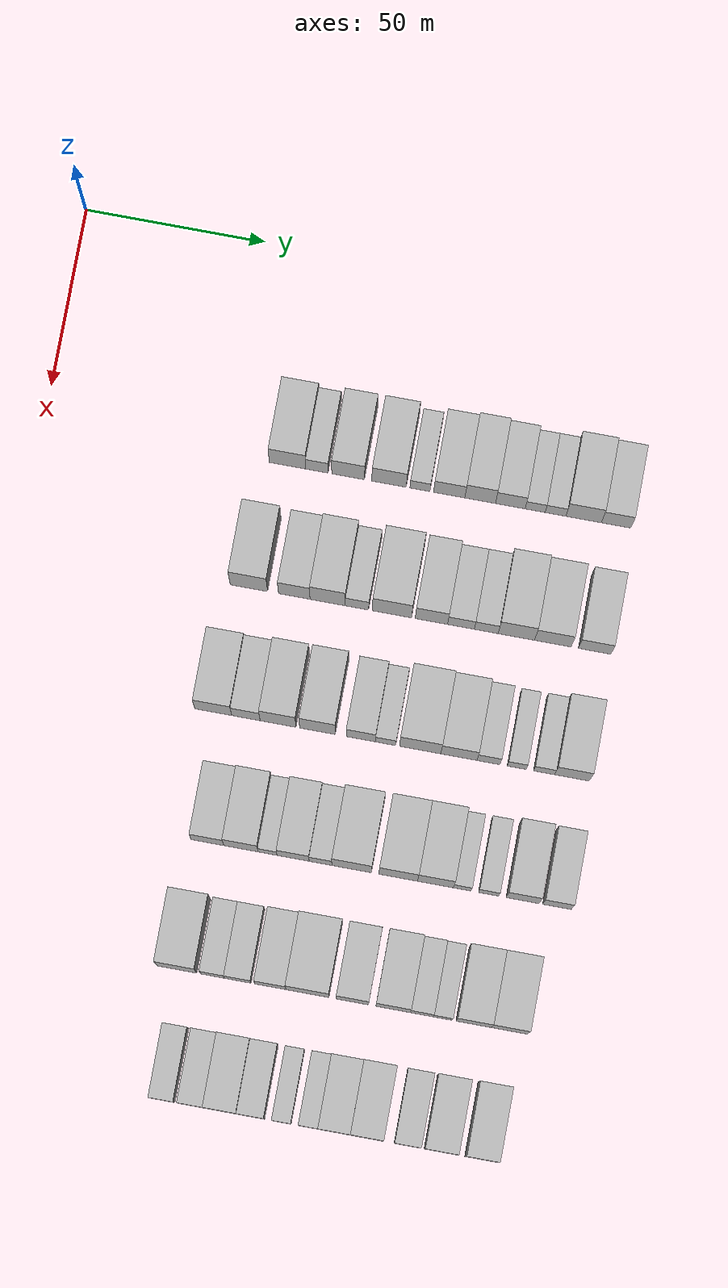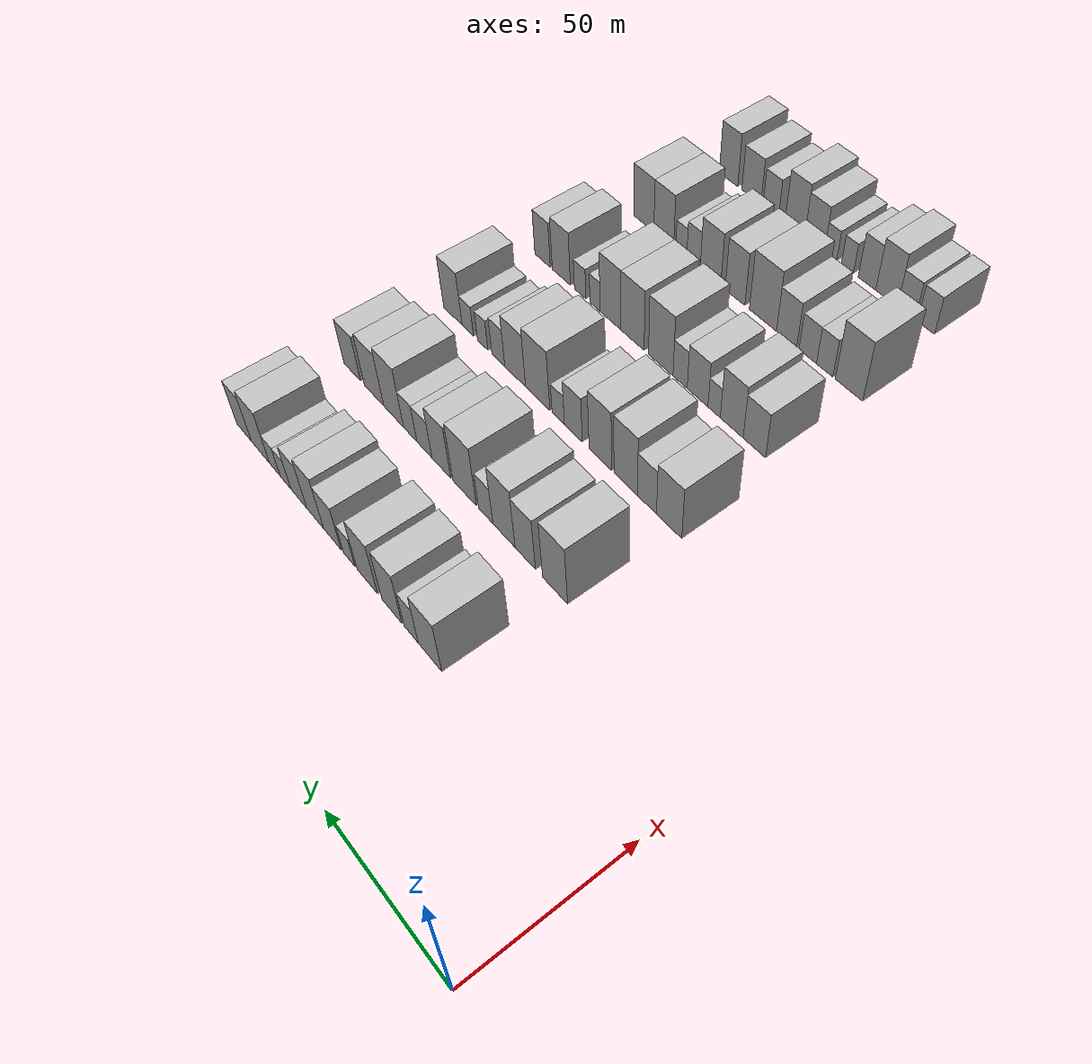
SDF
<sdf version="1.6">
 <world name="default">
  <model name="building_73">
   <static>1</static>
   <pose>50.0000 67.4264 0 0.000000 0.000000 0.000000</pose>
   <link name="link">
    <pose>0 0 10.50 0 0 0</pose>
    <collision name="collision"><geometry><box><size>20.0000 10.1006 21.0000</size></box></geometry></collision>
    <visual name="visual">
     <cast_shadows>0</cast_shadows>
     <geometry><box><size>20.0000 10.1006 21.0000</size></box></geometry>
     <material>
      <script>
       <uri>model://HANNAS_wall/materials/scripts</uri>
       <uri>model://HANNAS_wall/materials/textures</uri>
       <name>vrc/HANNAS_wall</name>
      </script>
     </material>
    </visual>
   </link>
  </model>
  <model name="building_74">
   <static>1</static>
   <pose>50.0000 75.5612 0 0.000000 0.000000 0.000000</pose>
   <link name="link">
    <pose>0 0 7.50 0 0 0</pose>
    <collision name="collision"><geometry><box><size>20.0000 6.1689 15.0000</size></box></geometry></collision>
    <visual name="visual">
     <cast_shadows>0</cast_shadows>
     <geometry><box><size>20.0000 6.1689 15.0000</size></box></geometry>
     <material>
      <script>
       <uri>model://HANNAS_wall/materials/scripts</uri>
       <uri>model://HANNAS_wall/materials/textures</uri>
       <name>vrc/HANNAS_wall</name>
      </script>
     </material>
    </visual>
   </link>
  </model>
  <model name="building_75">
   <static>1</static>
   <pose>50.0000 84.1789 0 0.000000 0.000000 0.000000</pose>
   <link name="link">
    <pose>0 0 10.50 0 0 0</pose>
    <collision name="collision"><geometry><box><size>20.0000 9.0665 21.0000</size></box></geometry></collision>
    <visual name="visual">
     <cast_shadows>0</cast_shadows>
     <geometry><box><size>20.0000 9.0665 21.0000</size></box></geometry>
     <material>
      <script>
       <uri>model://HANNAS_wall/materials/scripts</uri>
       <uri>model://HANNAS_wall/materials/textures</uri>
       <name>vrc/HANNAS_wall</name>
      </script>
     </material>
    </visual>
   </link>
  </model>
  <model name="building_76">
   <static>1</static>
   <pose>50.0000 95.4898 0 0.000000 0.000000 0.000000</pose>
   <link name="link">
    <pose>0 0 10.50 0 0 0</pose>
    <collision name="collision"><geometry><box><size>20.0000 9.5553 21.0000</size></box></geometry></collision>
    <visual name="visual">
     <cast_shadows>0</cast_shadows>
     <geometry><box><size>20.0000 9.5553 21.0000</size></box></geometry>
     <material>
      <script>
       <uri>model://HANNAS_wall/materials/scripts</uri>
       <uri>model://HANNAS_wall/materials/textures</uri>
       <name>vrc/HANNAS_wall</name>
      </script>
     </material>
    </visual>
   </link>
  </model>
  <model name="building_77">
   <static>1</static>
   <pose>50.0000 104.0410 0 0.000000 0.000000 0.000000</pose>
   <link name="link">
    <pose>0 0 6.00 0 0 0</pose>
    <collision name="collision"><geometry><box><size>20.0000 5.5472 12.0000</size></box></geometry></collision>
    <visual name="visual">
     <cast_shadows>0</cast_shadows>
     <geometry><box><size>20.0000 5.5472 12.0000</size></box></geometry>
     <material>
      <script>
       <uri>model://HANNAS_wall/materials/scripts</uri>
       <uri>model://HANNAS_wall/materials/textures</uri>
       <name>vrc/HANNAS_wall</name>
      </script>
     </material>
    </visual>
   </link>
  </model>
  <model name="building_78">
   <static>1</static>
   <pose>50.0000 112.1340 0 0.000000 0.000000 0.000000</pose>
   <link name="link">
    <pose>0 0 9.00 0 0 0</pose>
    <collision name="collision"><geometry><box><size>20.0000 8.6388 18.0000</size></box></geometry></collision>
    <visual name="visual">
     <cast_shadows>0</cast_shadows>
     <geometry><box><size>20.0000 8.6388 18.0000</size></box></geometry>
     <material>
      <script>
       <uri>model://HANNAS_wall/materials/scripts</uri>
       <uri>model://HANNAS_wall/materials/textures</uri>
       <name>vrc/HANNAS_wall</name>
      </script>
     </material>
    </visual>
   </link>
  </model>
  <model name="building_79">
   <static>1</static>
   <pose>50.0000 120.6830 0 0.000000 0.000000 0.000000</pose>
   <link name="link">
    <pose>0 0 10.50 0 0 0</pose>
    <collision name="collision"><geometry><box><size>20.0000 8.4591 21.0000</size></box></geometry></collision>
    <visual name="visual">
     <cast_shadows>0</cast_shadows>
     <geometry><box><size>20.0000 8.4591 21.0000</size></box></geometry>
     <material>
      <script>
       <uri>model://HANNAS_wall/materials/scripts</uri>
       <uri>model://HANNAS_wall/materials/textures</uri>
       <name>vrc/HANNAS_wall</name>
      </script>
     </material>
    </visual>
   </link>
  </model>
  <model name="building_80">
   <static>1</static>
   <pose>50.0000 129.0048 0 0.000000 0.000000 0.000000</pose>
   <link name="link">
    <pose>0 0 9.00 0 0 0</pose>
    <collision name="collision"><geometry><box><size>20.0000 8.1844 18.0000</size></box></geometry></collision>
    <visual name="visual">
     <cast_shadows>0</cast_shadows>
     <geometry><box><size>20.0000 8.1844 18.0000</size></box></geometry>
     <material>
      <script>
       <uri>model://HANNAS_wall/materials/scripts</uri>
       <uri>model://HANNAS_wall/materials/textures</uri>
       <name>vrc/HANNAS_wall</name>
      </script>
     </material>
    </visual>
   </link>
  </model>
  <model name="building_81">
   <static>1</static>
   <pose>50.0000 135.8698 0 0.000000 0.000000 0.000000</pose>
   <link name="link">
    <pose>0 0 6.00 0 0 0</pose>
    <collision name="collision"><geometry><box><size>20.0000 5.5455 12.0000</size></box></geometry></collision>
    <visual name="visual">
     <cast_shadows>0</cast_shadows>
     <geometry><box><size>20.0000 5.5455 12.0000</size></box></geometry>
     <material>
      <script>
       <uri>model://HANNAS_wall/materials/scripts</uri>
       <uri>model://HANNAS_wall/materials/textures</uri>
       <name>vrc/HANNAS_wall</name>
      </script>
     </material>
    </visual>
   </link>
  </model>
  <model name="building_82">
   <static>1</static>
   <pose>50.0000 141.4995 0 0.000000 0.000000 0.000000</pose>
   <link name="link">
    <pose>0 0 6.00 0 0 0</pose>
    <collision name="collision"><geometry><box><size>20.0000 5.7139 12.0000</size></box></geometry></collision>
    <visual name="visual">
     <cast_shadows>0</cast_shadows>
     <geometry><box><size>20.0000 5.7139 12.0000</size></box></geometry>
     <material>
      <script>
       <uri>model://HANNAS_wall/materials/scripts</uri>
       <uri>model://HANNAS_wall/materials/textures</uri>
       <name>vrc/HANNAS_wall</name>
      </script>
     </material>
    </visual>
   </link>
  </model>
  <model name="building_83">
   <static>1</static>
   <pose>50.0000 149.2563 0 0.000000 0.000000 0.000000</pose>
   <link name="link">
    <pose>0 0 10.50 0 0 0</pose>
    <collision name="collision"><geometry><box><size>20.0000 9.7998 21.0000</size></box></geometry></collision>
    <visual name="visual">
     <cast_shadows>0</cast_shadows>
     <geometry><box><size>20.0000 9.7998 21.0000</size></box></geometry>
     <material>
      <script>
       <uri>model://HANNAS_wall/materials/scripts</uri>
       <uri>model://HANNAS_wall/materials/textures</uri>
       <name>vrc/HANNAS_wall</name>
      </script>
     </material>
    </visual>
   </link>
  </model>
  <model name="building_84">
   <static>1</static>
   <pose>50.0000 158.2337 0 0.000000 0.000000 0.000000</pose>
   <link name="link">
    <pose>0 0 9.00 0 0 0</pose>
    <collision name="collision"><geometry><box><size>20.0000 8.1550 18.0000</size></box></geometry></collision>
    <visual name="visual">
     <cast_shadows>0</cast_shadows>
     <geometry><box><size>20.0000 8.1550 18.0000</size></box></geometry>
     <material>
      <script>
       <uri>model://HANNAS_wall/materials/scripts</uri>
       <uri>model://HANNAS_wall/materials/textures</uri>
       <name>vrc/HANNAS_wall</name>
      </script>
     </material>
    </visual>
   </link>
  </model>
  <model name="building_200">
   <static>1</static>
   <pose>85.0000 63.2922 0 0.000000 0.000000 0.000000</pose>
   <link name="link">
    <pose>0 0 12.00 0 0 0</pose>
    <collision name="collision"><geometry><box><size>20.0000 10.2936 24.0000</size></box></geometry></collision>
    <visual name="visual">
     <cast_shadows>0</cast_shadows>
     <geometry><box><size>20.0000 10.2936 24.0000</size></box></geometry>
     <material>
      <script>
       <uri>model://HANNAS_wall/materials/scripts</uri>
       <uri>model://HANNAS_wall/materials/textures</uri>
       <name>vrc/HANNAS_wall</name>
      </script>
     </material>
    </visual>
   </link>
  </model>
  <model name="building_201">
   <static>1</static>
   <pose>85.0000 75.7845 0 0.000000 0.000000 0.000000</pose>
   <link name="link">
    <pose>0 0 10.50 0 0 0</pose>
    <collision name="collision"><geometry><box><size>20.0000 8.6910 21.0000</size></box></geometry></collision>
    <visual name="visual">
     <cast_shadows>0</cast_shadows>
     <geometry><box><size>20.0000 8.6910 21.0000</size></box></geometry>
     <material>
      <script>
       <uri>model://HANNAS_wall/materials/scripts</uri>
       <uri>model://HANNAS_wall/materials/textures</uri>
       <name>vrc/HANNAS_wall</name>
      </script>
     </material>
    </visual>
   </link>
  </model>
  <model name="building_202">
   <static>1</static>
   <pose>85.0000 84.9966 0 0.000000 0.000000 0.000000</pose>
   <link name="link">
    <pose>0 0 12.00 0 0 0</pose>
    <collision name="collision"><geometry><box><size>20.0000 9.7331 24.0000</size></box></geometry></collision>
    <visual name="visual">
     <cast_shadows>0</cast_shadows>
     <geometry><box><size>20.0000 9.7331 24.0000</size></box></geometry>
     <material>
      <script>
       <uri>model://HANNAS_wall/materials/scripts</uri>
       <uri>model://HANNAS_wall/materials/textures</uri>
       <name>vrc/HANNAS_wall</name>
      </script>
     </material>
    </visual>
   </link>
  </model>
  <model name="building_203">
   <static>1</static>
   <pose>85.0000 93.0707 0 0.000000 0.000000 0.000000</pose>
   <link name="link">
    <pose>0 0 7.50 0 0 0</pose>
    <collision name="collision"><geometry><box><size>20.0000 6.4151 15.0000</size></box></geometry></collision>
    <visual name="visual">
     <cast_shadows>0</cast_shadows>
     <geometry><box><size>20.0000 6.4151 15.0000</size></box></geometry>
     <material>
      <script>
       <uri>model://HANNAS_wall/materials/scripts</uri>
       <uri>model://HANNAS_wall/materials/textures</uri>
       <name>vrc/HANNAS_wall</name>
      </script>
     </material>
    </visual>
   </link>
  </model>
  <model name="building_204">
   <static>1</static>
   <pose>85.0000 102.6918 0 0.000000 0.000000 0.000000</pose>
   <link name="link">
    <pose>0 0 12.00 0 0 0</pose>
    <collision name="collision"><geometry><box><size>20.0000 10.8271 24.0000</size></box></geometry></collision>
    <visual name="visual">
     <cast_shadows>0</cast_shadows>
     <geometry><box><size>20.0000 10.8271 24.0000</size></box></geometry>
     <material>
      <script>
       <uri>model://HANNAS_wall/materials/scripts</uri>
       <uri>model://HANNAS_wall/materials/textures</uri>
       <name>vrc/HANNAS_wall</name>
      </script>
     </material>
    </visual>
   </link>
  </model>
  <model name="building_205">
   <static>1</static>
   <pose>85.0000 113.5567 0 0.000000 0.000000 0.000000</pose>
   <link name="link">
    <pose>0 0 10.50 0 0 0</pose>
    <collision name="collision"><geometry><box><size>20.0000 8.9026 21.0000</size></box></geometry></collision>
    <visual name="visual">
     <cast_shadows>0</cast_shadows>
     <geometry><box><size>20.0000 8.9026 21.0000</size></box></geometry>
     <material>
      <script>
       <uri>model://HANNAS_wall/materials/scripts</uri>
       <uri>model://HANNAS_wall/materials/textures</uri>
       <name>vrc/HANNAS_wall</name>
      </script>
     </material>
    </visual>
   </link>
  </model>
  <model name="building_206">
   <static>1</static>
   <pose>85.0000 121.6901 0 0.000000 0.000000 0.000000</pose>
   <link name="link">
    <pose>0 0 7.50 0 0 0</pose>
    <collision name="collision"><geometry><box><size>20.0000 7.3642 15.0000</size></box></geometry></collision>
    <visual name="visual">
     <cast_shadows>0</cast_shadows>
     <geometry><box><size>20.0000 7.3642 15.0000</size></box></geometry>
     <material>
      <script>
       <uri>model://HANNAS_wall/materials/scripts</uri>
       <uri>model://HANNAS_wall/materials/textures</uri>
       <name>vrc/HANNAS_wall</name>
      </script>
     </material>
    </visual>
   </link>
  </model>
  <model name="building_207">
   <static>1</static>
   <pose>85.0000 128.6524 0 0.000000 0.000000 0.000000</pose>
   <link name="link">
    <pose>0 0 7.50 0 0 0</pose>
    <collision name="collision"><geometry><box><size>20.0000 6.5603 15.0000</size></box></geometry></collision>
    <visual name="visual">
     <cast_shadows>0</cast_shadows>
     <geometry><box><size>20.0000 6.5603 15.0000</size></box></geometry>
     <material>
      <script>
       <uri>model://HANNAS_wall/materials/scripts</uri>
       <uri>model://HANNAS_wall/materials/textures</uri>
       <name>vrc/HANNAS_wall</name>
      </script>
     </material>
    </visual>
   </link>
  </model>
  <model name="building_208">
   <static>1</static>
   <pose>85.0000 136.9403 0 0.000000 0.000000 0.000000</pose>
   <link name="link">
    <pose>0 0 12.00 0 0 0</pose>
    <collision name="collision"><geometry><box><size>20.0000 10.0155 24.0000</size></box></geometry></collision>
    <visual name="visual">
     <cast_shadows>0</cast_shadows>
     <geometry><box><size>20.0000 10.0155 24.0000</size></box></geometry>
     <material>
      <script>
       <uri>model://HANNAS_wall/materials/scripts</uri>
       <uri>model://HANNAS_wall/materials/textures</uri>
       <name>vrc/HANNAS_wall</name>
      </script>
     </material>
    </visual>
   </link>
  </model>
  <model name="building_209">
   <static>1</static>
   <pose>85.0000 146.9889 0 0.000000 0.000000 0.000000</pose>
   <link name="link">
    <pose>0 0 10.50 0 0 0</pose>
    <collision name="collision"><geometry><box><size>20.0000 10.0817 21.0000</size></box></geometry></collision>
    <visual name="visual">
     <cast_shadows>0</cast_shadows>
     <geometry><box><size>20.0000 10.0817 21.0000</size></box></geometry>
     <material>
      <script>
       <uri>model://HANNAS_wall/materials/scripts</uri>
       <uri>model://HANNAS_wall/materials/textures</uri>
       <name>vrc/HANNAS_wall</name>
      </script>
     </material>
    </visual>
   </link>
  </model>
  <model name="building_210">
   <static>1</static>
   <pose>85.0000 158.4977 0 0.000000 0.000000 0.000000</pose>
   <link name="link">
    <pose>0 0 9.00 0 0 0</pose>
    <collision name="collision"><geometry><box><size>20.0000 8.9359 18.0000</size></box></geometry></collision>
    <visual name="visual">
     <cast_shadows>0</cast_shadows>
     <geometry><box><size>20.0000 8.9359 18.0000</size></box></geometry>
     <material>
      <script>
       <uri>model://HANNAS_wall/materials/scripts</uri>
       <uri>model://HANNAS_wall/materials/textures</uri>
       <name>vrc/HANNAS_wall</name>
      </script>
     </material>
    </visual>
   </link>
  </model>
  <model name="building_319">
   <static>1</static>
   <pose>120.0000 60.0692 0 0.000000 0.000000 0.000000</pose>
   <link name="link">
    <pose>0 0 10.50 0 0 0</pose>
    <collision name="collision"><geometry><box><size>20.0000 10.1100 21.0000</size></box></geometry></collision>
    <visual name="visual">
     <cast_shadows>0</cast_shadows>
     <geometry><box><size>20.0000 10.1100 21.0000</size></box></geometry>
     <material>
      <script>
       <uri>model://HANNAS_wall/materials/scripts</uri>
       <uri>model://HANNAS_wall/materials/textures</uri>
       <name>vrc/HANNAS_wall</name>
      </script>
     </material>
    </visual>
   </link>
  </model>
  <model name="building_320">
   <static>1</static>
   <pose>120.0000 69.0265 0 0.000000 0.000000 0.000000</pose>
   <link name="link">
    <pose>0 0 9.00 0 0 0</pose>
    <collision name="collision"><geometry><box><size>20.0000 7.8048 18.0000</size></box></geometry></collision>
    <visual name="visual">
     <cast_shadows>0</cast_shadows>
     <geometry><box><size>20.0000 7.8048 18.0000</size></box></geometry>
     <material>
      <script>
       <uri>model://HANNAS_wall/materials/scripts</uri>
       <uri>model://HANNAS_wall/materials/textures</uri>
       <name>vrc/HANNAS_wall</name>
      </script>
     </material>
    </visual>
   </link>
  </model>
  <model name="building_321">
   <static>1</static>
   <pose>120.0000 77.8520 0 0.000000 0.000000 0.000000</pose>
   <link name="link">
    <pose>0 0 12.00 0 0 0</pose>
    <collision name="collision"><geometry><box><size>20.0000 9.8462 24.0000</size></box></geometry></collision>
    <visual name="visual">
     <cast_shadows>0</cast_shadows>
     <geometry><box><size>20.0000 9.8462 24.0000</size></box></geometry>
     <material>
      <script>
       <uri>model://HANNAS_wall/materials/scripts</uri>
       <uri>model://HANNAS_wall/materials/textures</uri>
       <name>vrc/HANNAS_wall</name>
      </script>
     </material>
    </visual>
   </link>
  </model>
  <model name="building_322">
   <static>1</static>
   <pose>120.0000 88.6615 0 0.000000 0.000000 0.000000</pose>
   <link name="link">
    <pose>0 0 12.00 0 0 0</pose>
    <collision name="collision"><geometry><box><size>20.0000 9.7728 24.0000</size></box></geometry></collision>
    <visual name="visual">
     <cast_shadows>0</cast_shadows>
     <geometry><box><size>20.0000 9.7728 24.0000</size></box></geometry>
     <material>
      <script>
       <uri>model://HANNAS_wall/materials/scripts</uri>
       <uri>model://HANNAS_wall/materials/textures</uri>
       <name>vrc/HANNAS_wall</name>
      </script>
     </material>
    </visual>
   </link>
  </model>
  <model name="building_323">
   <static>1</static>
   <pose>120.0000 100.5401 0 0.000000 0.000000 0.000000</pose>
   <link name="link">
    <pose>0 0 9.00 0 0 0</pose>
    <collision name="collision"><geometry><box><size>20.0000 7.9845 18.0000</size></box></geometry></collision>
    <visual name="visual">
     <cast_shadows>0</cast_shadows>
     <geometry><box><size>20.0000 7.9845 18.0000</size></box></geometry>
     <material>
      <script>
       <uri>model://HANNAS_wall/materials/scripts</uri>
       <uri>model://HANNAS_wall/materials/textures</uri>
       <name>vrc/HANNAS_wall</name>
      </script>
     </material>
    </visual>
   </link>
  </model>
  <model name="building_324">
   <static>1</static>
   <pose>120.0000 107.3427 0 0.000000 0.000000 0.000000</pose>
   <link name="link">
    <pose>0 0 6.00 0 0 0</pose>
    <collision name="collision"><geometry><box><size>20.0000 5.6206 12.0000</size></box></geometry></collision>
    <visual name="visual">
     <cast_shadows>0</cast_shadows>
     <geometry><box><size>20.0000 5.6206 12.0000</size></box></geometry>
     <material>
      <script>
       <uri>model://HANNAS_wall/materials/scripts</uri>
       <uri>model://HANNAS_wall/materials/textures</uri>
       <name>vrc/HANNAS_wall</name>
      </script>
     </material>
    </visual>
   </link>
  </model>
  <model name="building_325">
   <static>1</static>
   <pose>120.0000 116.8260 0 0.000000 0.000000 0.000000</pose>
   <link name="link">
    <pose>0 0 12.00 0 0 0</pose>
    <collision name="collision"><geometry><box><size>20.0000 11.3459 24.0000</size></box></geometry></collision>
    <visual name="visual">
     <cast_shadows>0</cast_shadows>
     <geometry><box><size>20.0000 11.3459 24.0000</size></box></geometry>
     <material>
      <script>
       <uri>model://HANNAS_wall/materials/scripts</uri>
       <uri>model://HANNAS_wall/materials/textures</uri>
       <name>vrc/HANNAS_wall</name>
      </script>
     </material>
    </visual>
   </link>
  </model>
  <model name="building_326">
   <static>1</static>
   <pose>120.0000 127.4588 0 0.000000 0.000000 0.000000</pose>
   <link name="link">
    <pose>0 0 10.50 0 0 0</pose>
    <collision name="collision"><geometry><box><size>20.0000 9.9198 21.0000</size></box></geometry></collision>
    <visual name="visual">
     <cast_shadows>0</cast_shadows>
     <geometry><box><size>20.0000 9.9198 21.0000</size></box></geometry>
     <material>
      <script>
       <uri>model://HANNAS_wall/materials/scripts</uri>
       <uri>model://HANNAS_wall/materials/textures</uri>
       <name>vrc/HANNAS_wall</name>
      </script>
     </material>
    </visual>
   </link>
  </model>
  <model name="building_327">
   <static>1</static>
   <pose>120.0000 135.5759 0 0.000000 0.000000 0.000000</pose>
   <link name="link">
    <pose>0 0 7.50 0 0 0</pose>
    <collision name="collision"><geometry><box><size>20.0000 6.3144 15.0000</size></box></geometry></collision>
    <visual name="visual">
     <cast_shadows>0</cast_shadows>
     <geometry><box><size>20.0000 6.3144 15.0000</size></box></geometry>
     <material>
      <script>
       <uri>model://HANNAS_wall/materials/scripts</uri>
       <uri>model://HANNAS_wall/materials/textures</uri>
       <name>vrc/HANNAS_wall</name>
      </script>
     </material>
    </visual>
   </link>
  </model>
  <model name="building_328">
   <static>1</static>
   <pose>120.0000 143.3287 0 0.000000 0.000000 0.000000</pose>
   <link name="link">
    <pose>0 0 6.00 0 0 0</pose>
    <collision name="collision"><geometry><box><size>20.0000 5.1912 12.0000</size></box></geometry></collision>
    <visual name="visual">
     <cast_shadows>0</cast_shadows>
     <geometry><box><size>20.0000 5.1912 12.0000</size></box></geometry>
     <material>
      <script>
       <uri>model://HANNAS_wall/materials/scripts</uri>
       <uri>model://HANNAS_wall/materials/textures</uri>
       <name>vrc/HANNAS_wall</name>
      </script>
     </material>
    </visual>
   </link>
  </model>
  <model name="building_329">
   <static>1</static>
   <pose>120.0000 150.8056 0 0.000000 0.000000 0.000000</pose>
   <link name="link">
    <pose>0 0 6.00 0 0 0</pose>
    <collision name="collision"><geometry><box><size>20.0000 5.7628 12.0000</size></box></geometry></collision>
    <visual name="visual">
     <cast_shadows>0</cast_shadows>
     <geometry><box><size>20.0000 5.7628 12.0000</size></box></geometry>
     <material>
      <script>
       <uri>model://HANNAS_wall/materials/scripts</uri>
       <uri>model://HANNAS_wall/materials/textures</uri>
       <name>vrc/HANNAS_wall</name>
      </script>
     </material>
    </visual>
   </link>
  </model>
  <model name="building_330">
   <static>1</static>
   <pose>120.0000 158.4605 0 0.000000 0.000000 0.000000</pose>
   <link name="link">
    <pose>0 0 10.50 0 0 0</pose>
    <collision name="collision"><geometry><box><size>20.0000 9.5468 21.0000</size></box></geometry></collision>
    <visual name="visual">
     <cast_shadows>0</cast_shadows>
     <geometry><box><size>20.0000 9.5468 21.0000</size></box></geometry>
     <material>
      <script>
       <uri>model://HANNAS_wall/materials/scripts</uri>
       <uri>model://HANNAS_wall/materials/textures</uri>
       <name>vrc/HANNAS_wall</name>
      </script>
     </material>
    </visual>
   </link>
  </model>
  <model name="building_448">
   <static>1</static>
   <pose>155.0000 65.0776 0 0.000000 0.000000 0.000000</pose>
   <link name="link">
    <pose>0 0 9.00 0 0 0</pose>
    <collision name="collision"><geometry><box><size>20.0000 8.9442 18.0000</size></box></geometry></collision>
    <visual name="visual">
     <cast_shadows>0</cast_shadows>
     <geometry><box><size>20.0000 8.9442 18.0000</size></box></geometry>
     <material>
      <script>
       <uri>model://HANNAS_wall/materials/scripts</uri>
       <uri>model://HANNAS_wall/materials/textures</uri>
       <name>vrc/HANNAS_wall</name>
      </script>
     </material>
    </visual>
   </link>
  </model>
  <model name="building_449">
   <static>1</static>
   <pose>155.0000 74.2441 0 0.000000 0.000000 0.000000</pose>
   <link name="link">
    <pose>0 0 10.50 0 0 0</pose>
    <collision name="collision"><geometry><box><size>20.0000 9.3889 21.0000</size></box></geometry></collision>
    <visual name="visual">
     <cast_shadows>0</cast_shadows>
     <geometry><box><size>20.0000 9.3889 21.0000</size></box></geometry>
     <material>
      <script>
       <uri>model://HANNAS_wall/materials/scripts</uri>
       <uri>model://HANNAS_wall/materials/textures</uri>
       <name>vrc/HANNAS_wall</name>
      </script>
     </material>
    </visual>
   </link>
  </model>
  <model name="building_450">
   <static>1</static>
   <pose>155.0000 81.5058 0 0.000000 0.000000 0.000000</pose>
   <link name="link">
    <pose>0 0 6.00 0 0 0</pose>
    <collision name="collision"><geometry><box><size>20.0000 5.1344 12.0000</size></box></geometry></collision>
    <visual name="visual">
     <cast_shadows>0</cast_shadows>
     <geometry><box><size>20.0000 5.1344 12.0000</size></box></geometry>
     <material>
      <script>
       <uri>model://HANNAS_wall/materials/scripts</uri>
       <uri>model://HANNAS_wall/materials/textures</uri>
       <name>vrc/HANNAS_wall</name>
      </script>
     </material>
    </visual>
   </link>
  </model>
  <model name="building_451">
   <static>1</static>
   <pose>155.0000 88.4830 0 0.000000 0.000000 0.000000</pose>
   <link name="link">
    <pose>0 0 9.00 0 0 0</pose>
    <collision name="collision"><geometry><box><size>20.0000 8.8201 18.0000</size></box></geometry></collision>
    <visual name="visual">
     <cast_shadows>0</cast_shadows>
     <geometry><box><size>20.0000 8.8201 18.0000</size></box></geometry>
     <material>
      <script>
       <uri>model://HANNAS_wall/materials/scripts</uri>
       <uri>model://HANNAS_wall/materials/textures</uri>
       <name>vrc/HANNAS_wall</name>
      </script>
     </material>
    </visual>
   </link>
  </model>
  <model name="building_452">
   <static>1</static>
   <pose>155.0000 95.9741 0 0.000000 0.000000 0.000000</pose>
   <link name="link">
    <pose>0 0 7.50 0 0 0</pose>
    <collision name="collision"><geometry><box><size>20.0000 6.1621 15.0000</size></box></geometry></collision>
    <visual name="visual">
     <cast_shadows>0</cast_shadows>
     <geometry><box><size>20.0000 6.1621 15.0000</size></box></geometry>
     <material>
      <script>
       <uri>model://HANNAS_wall/materials/scripts</uri>
       <uri>model://HANNAS_wall/materials/textures</uri>
       <name>vrc/HANNAS_wall</name>
      </script>
     </material>
    </visual>
   </link>
  </model>
  <model name="building_453">
   <static>1</static>
   <pose>155.0000 104.4817 0 0.000000 0.000000 0.000000</pose>
   <link name="link">
    <pose>0 0 12.00 0 0 0</pose>
    <collision name="collision"><geometry><box><size>20.0000 10.8530 24.0000</size></box></geometry></collision>
    <visual name="visual">
     <cast_shadows>0</cast_shadows>
     <geometry><box><size>20.0000 10.8530 24.0000</size></box></geometry>
     <material>
      <script>
       <uri>model://HANNAS_wall/materials/scripts</uri>
       <uri>model://HANNAS_wall/materials/textures</uri>
       <name>vrc/HANNAS_wall</name>
      </script>
     </material>
    </visual>
   </link>
  </model>
  <model name="building_454">
   <static>1</static>
   <pose>155.0000 117.1955 0 0.000000 0.000000 0.000000</pose>
   <link name="link">
    <pose>0 0 12.00 0 0 0</pose>
    <collision name="collision"><geometry><box><size>20.0000 10.5746 24.0000</size></box></geometry></collision>
    <visual name="visual">
     <cast_shadows>0</cast_shadows>
     <geometry><box><size>20.0000 10.5746 24.0000</size></box></geometry>
     <material>
      <script>
       <uri>model://HANNAS_wall/materials/scripts</uri>
       <uri>model://HANNAS_wall/materials/textures</uri>
       <name>vrc/HANNAS_wall</name>
      </script>
     </material>
    </visual>
   </link>
  </model>
  <model name="building_455">
   <static>1</static>
   <pose>155.0000 127.3818 0 0.000000 0.000000 0.000000</pose>
   <link name="link">
    <pose>0 0 12.00 0 0 0</pose>
    <collision name="collision"><geometry><box><size>20.0000 9.7982 24.0000</size></box></geometry></collision>
    <visual name="visual">
     <cast_shadows>0</cast_shadows>
     <geometry><box><size>20.0000 9.7982 24.0000</size></box></geometry>
     <material>
      <script>
       <uri>model://HANNAS_wall/materials/scripts</uri>
       <uri>model://HANNAS_wall/materials/textures</uri>
       <name>vrc/HANNAS_wall</name>
      </script>
     </material>
    </visual>
   </link>
  </model>
  <model name="building_456">
   <static>1</static>
   <pose>155.0000 134.7062 0 0.000000 0.000000 0.000000</pose>
   <link name="link">
    <pose>0 0 6.00 0 0 0</pose>
    <collision name="collision"><geometry><box><size>20.0000 4.8504 12.0000</size></box></geometry></collision>
    <visual name="visual">
     <cast_shadows>0</cast_shadows>
     <geometry><box><size>20.0000 4.8504 12.0000</size></box></geometry>
     <material>
      <script>
       <uri>model://HANNAS_wall/materials/scripts</uri>
       <uri>model://HANNAS_wall/materials/textures</uri>
       <name>vrc/HANNAS_wall</name>
      </script>
     </material>
    </visual>
   </link>
  </model>
  <model name="building_457">
   <static>1</static>
   <pose>155.0000 141.9086 0 0.000000 0.000000 0.000000</pose>
   <link name="link">
    <pose>0 0 6.00 0 0 0</pose>
    <collision name="collision"><geometry><box><size>20.0000 5.5545 12.0000</size></box></geometry></collision>
    <visual name="visual">
     <cast_shadows>0</cast_shadows>
     <geometry><box><size>20.0000 5.5545 12.0000</size></box></geometry>
     <material>
      <script>
       <uri>model://HANNAS_wall/materials/scripts</uri>
       <uri>model://HANNAS_wall/materials/textures</uri>
       <name>vrc/HANNAS_wall</name>
      </script>
     </material>
    </visual>
   </link>
  </model>
  <model name="building_458">
   <static>1</static>
   <pose>155.0000 151.1786 0 0.000000 0.000000 0.000000</pose>
   <link name="link">
    <pose>0 0 10.50 0 0 0</pose>
    <collision name="collision"><geometry><box><size>20.0000 8.9854 21.0000</size></box></geometry></collision>
    <visual name="visual">
     <cast_shadows>0</cast_shadows>
     <geometry><box><size>20.0000 8.9854 21.0000</size></box></geometry>
     <material>
      <script>
       <uri>model://HANNAS_wall/materials/scripts</uri>
       <uri>model://HANNAS_wall/materials/textures</uri>
       <name>vrc/HANNAS_wall</name>
      </script>
     </material>
    </visual>
   </link>
  </model>
  <model name="building_459">
   <static>1</static>
   <pose>155.0000 160.5766 0 0.000000 0.000000 0.000000</pose>
   <link name="link">
    <pose>0 0 9.00 0 0 0</pose>
    <collision name="collision"><geometry><box><size>20.0000 7.8107 18.0000</size></box></geometry></collision>
    <visual name="visual">
     <cast_shadows>0</cast_shadows>
     <geometry><box><size>20.0000 7.8107 18.0000</size></box></geometry>
     <material>
      <script>
       <uri>model://HANNAS_wall/materials/scripts</uri>
       <uri>model://HANNAS_wall/materials/textures</uri>
       <name>vrc/HANNAS_wall</name>
      </script>
     </material>
    </visual>
   </link>
  </model>
  <model name="building_573">
   <static>1</static>
   <pose>190.0000 63.3901 0 0.000000 0.000000 0.000000</pose>
   <link name="link">
    <pose>0 0 12.00 0 0 0</pose>
    <collision name="collision"><geometry><box><size>20.0000 10.8035 24.0000</size></box></geometry></collision>
    <visual name="visual">
     <cast_shadows>0</cast_shadows>
     <geometry><box><size>20.0000 10.8035 24.0000</size></box></geometry>
     <material>
      <script>
       <uri>model://HANNAS_wall/materials/scripts</uri>
       <uri>model://HANNAS_wall/materials/textures</uri>
       <name>vrc/HANNAS_wall</name>
      </script>
     </material>
    </visual>
   </link>
  </model>
  <model name="building_574">
   <static>1</static>
   <pose>190.0000 73.0958 0 0.000000 0.000000 0.000000</pose>
   <link name="link">
    <pose>0 0 7.50 0 0 0</pose>
    <collision name="collision"><geometry><box><size>20.0000 6.6079 15.0000</size></box></geometry></collision>
    <visual name="visual">
     <cast_shadows>0</cast_shadows>
     <geometry><box><size>20.0000 6.6079 15.0000</size></box></geometry>
     <material>
      <script>
       <uri>model://HANNAS_wall/materials/scripts</uri>
       <uri>model://HANNAS_wall/materials/textures</uri>
       <name>vrc/HANNAS_wall</name>
      </script>
     </material>
    </visual>
   </link>
  </model>
  <model name="building_575">
   <static>1</static>
   <pose>190.0000 79.9862 0 0.000000 0.000000 0.000000</pose>
   <link name="link">
    <pose>0 0 7.50 0 0 0</pose>
    <collision name="collision"><geometry><box><size>20.0000 7.1729 15.0000</size></box></geometry></collision>
    <visual name="visual">
     <cast_shadows>0</cast_shadows>
     <geometry><box><size>20.0000 7.1729 15.0000</size></box></geometry>
     <material>
      <script>
       <uri>model://HANNAS_wall/materials/scripts</uri>
       <uri>model://HANNAS_wall/materials/textures</uri>
       <name>vrc/HANNAS_wall</name>
      </script>
     </material>
    </visual>
   </link>
  </model>
  <model name="building_576">
   <static>1</static>
   <pose>190.0000 88.8140 0 0.000000 0.000000 0.000000</pose>
   <link name="link">
    <pose>0 0 9.00 0 0 0</pose>
    <collision name="collision"><geometry><box><size>20.0000 8.4828 18.0000</size></box></geometry></collision>
    <visual name="visual">
     <cast_shadows>0</cast_shadows>
     <geometry><box><size>20.0000 8.4828 18.0000</size></box></geometry>
     <material>
      <script>
       <uri>model://HANNAS_wall/materials/scripts</uri>
       <uri>model://HANNAS_wall/materials/textures</uri>
       <name>vrc/HANNAS_wall</name>
      </script>
     </material>
    </visual>
   </link>
  </model>
  <model name="building_577">
   <static>1</static>
   <pose>190.0000 98.9039 0 0.000000 0.000000 0.000000</pose>
   <link name="link">
    <pose>0 0 12.00 0 0 0</pose>
    <collision name="collision"><geometry><box><size>20.0000 11.6969 24.0000</size></box></geometry></collision>
    <visual name="visual">
     <cast_shadows>0</cast_shadows>
     <geometry><box><size>20.0000 11.6969 24.0000</size></box></geometry>
     <material>
      <script>
       <uri>model://HANNAS_wall/materials/scripts</uri>
       <uri>model://HANNAS_wall/materials/textures</uri>
       <name>vrc/HANNAS_wall</name>
      </script>
     </material>
    </visual>
   </link>
  </model>
  <model name="building_578">
   <static>1</static>
   <pose>190.0000 111.1318 0 0.000000 0.000000 0.000000</pose>
   <link name="link">
    <pose>0 0 10.50 0 0 0</pose>
    <collision name="collision"><geometry><box><size>20.0000 8.7591 21.0000</size></box></geometry></collision>
    <visual name="visual">
     <cast_shadows>0</cast_shadows>
     <geometry><box><size>20.0000 8.7591 21.0000</size></box></geometry>
     <material>
      <script>
       <uri>model://HANNAS_wall/materials/scripts</uri>
       <uri>model://HANNAS_wall/materials/textures</uri>
       <name>vrc/HANNAS_wall</name>
      </script>
     </material>
    </visual>
   </link>
  </model>
  <model name="building_579">
   <static>1</static>
   <pose>190.0000 122.1937 0 0.000000 0.000000 0.000000</pose>
   <link name="link">
    <pose>0 0 10.50 0 0 0</pose>
    <collision name="collision"><geometry><box><size>20.0000 9.3647 21.0000</size></box></geometry></collision>
    <visual name="visual">
     <cast_shadows>0</cast_shadows>
     <geometry><box><size>20.0000 9.3647 21.0000</size></box></geometry>
     <material>
      <script>
       <uri>model://HANNAS_wall/materials/scripts</uri>
       <uri>model://HANNAS_wall/materials/textures</uri>
       <name>vrc/HANNAS_wall</name>
      </script>
     </material>
    </visual>
   </link>
  </model>
  <model name="building_580">
   <static>1</static>
   <pose>190.0000 130.0144 0 0.000000 0.000000 0.000000</pose>
   <link name="link">
    <pose>0 0 7.50 0 0 0</pose>
    <collision name="collision"><geometry><box><size>20.0000 6.2765 15.0000</size></box></geometry></collision>
    <visual name="visual">
     <cast_shadows>0</cast_shadows>
     <geometry><box><size>20.0000 6.2765 15.0000</size></box></geometry>
     <material>
      <script>
       <uri>model://HANNAS_wall/materials/scripts</uri>
       <uri>model://HANNAS_wall/materials/textures</uri>
       <name>vrc/HANNAS_wall</name>
      </script>
     </material>
    </visual>
   </link>
  </model>
  <model name="building_581">
   <static>1</static>
   <pose>190.0000 135.7319 0 0.000000 0.000000 0.000000</pose>
   <link name="link">
    <pose>0 0 6.00 0 0 0</pose>
    <collision name="collision"><geometry><box><size>20.0000 5.1586 12.0000</size></box></geometry></collision>
    <visual name="visual">
     <cast_shadows>0</cast_shadows>
     <geometry><box><size>20.0000 5.1586 12.0000</size></box></geometry>
     <material>
      <script>
       <uri>model://HANNAS_wall/materials/scripts</uri>
       <uri>model://HANNAS_wall/materials/textures</uri>
       <name>vrc/HANNAS_wall</name>
      </script>
     </material>
    </visual>
   </link>
  </model>
  <model name="building_582">
   <static>1</static>
   <pose>190.0000 144.0952 0 0.000000 0.000000 0.000000</pose>
   <link name="link">
    <pose>0 0 10.50 0 0 0</pose>
    <collision name="collision"><geometry><box><size>20.0000 9.5679 21.0000</size></box></geometry></collision>
    <visual name="visual">
     <cast_shadows>0</cast_shadows>
     <geometry><box><size>20.0000 9.5679 21.0000</size></box></geometry>
     <material>
      <script>
       <uri>model://HANNAS_wall/materials/scripts</uri>
       <uri>model://HANNAS_wall/materials/textures</uri>
       <name>vrc/HANNAS_wall</name>
      </script>
     </material>
    </visual>
   </link>
  </model>
  <model name="building_583">
   <static>1</static>
   <pose>190.0000 153.8127 0 0.000000 0.000000 0.000000</pose>
   <link name="link">
    <pose>0 0 10.50 0 0 0</pose>
    <collision name="collision"><geometry><box><size>20.0000 9.8671 21.0000</size></box></geometry></collision>
    <visual name="visual">
     <cast_shadows>0</cast_shadows>
     <geometry><box><size>20.0000 9.8671 21.0000</size></box></geometry>
     <material>
      <script>
       <uri>model://HANNAS_wall/materials/scripts</uri>
       <uri>model://HANNAS_wall/materials/textures</uri>
       <name>vrc/HANNAS_wall</name>
      </script>
     </material>
    </visual>
   </link>
  </model>
  <model name="building_705">
   <static>1</static>
   <pose>225.0000 66.0591 0 0.000000 0.000000 0.000000</pose>
   <link name="link">
    <pose>0 0 7.50 0 0 0</pose>
    <collision name="collision"><geometry><box><size>20.0000 6.6710 15.0000</size></box></geometry></collision>
    <visual name="visual">
     <cast_shadows>0</cast_shadows>
     <geometry><box><size>20.0000 6.6710 15.0000</size></box></geometry>
     <material>
      <script>
       <uri>model://HANNAS_wall/materials/scripts</uri>
       <uri>model://HANNAS_wall/materials/textures</uri>
       <name>vrc/HANNAS_wall</name>
      </script>
     </material>
    </visual>
   </link>
  </model>
  <model name="building_706">
   <static>1</static>
   <pose>225.0000 73.9327 0 0.000000 0.000000 0.000000</pose>
   <link name="link">
    <pose>0 0 7.50 0 0 0</pose>
    <collision name="collision"><geometry><box><size>20.0000 7.0762 15.0000</size></box></geometry></collision>
    <visual name="visual">
     <cast_shadows>0</cast_shadows>
     <geometry><box><size>20.0000 7.0762 15.0000</size></box></geometry>
     <material>
      <script>
       <uri>model://HANNAS_wall/materials/scripts</uri>
       <uri>model://HANNAS_wall/materials/textures</uri>
       <name>vrc/HANNAS_wall</name>
      </script>
     </material>
    </visual>
   </link>
  </model>
  <model name="building_707">
   <static>1</static>
   <pose>225.0000 81.9414 0 0.000000 0.000000 0.000000</pose>
   <link name="link">
    <pose>0 0 10.50 0 0 0</pose>
    <collision name="collision"><geometry><box><size>20.0000 8.9412 21.0000</size></box></geometry></collision>
    <visual name="visual">
     <cast_shadows>0</cast_shadows>
     <geometry><box><size>20.0000 8.9412 21.0000</size></box></geometry>
     <material>
      <script>
       <uri>model://HANNAS_wall/materials/scripts</uri>
       <uri>model://HANNAS_wall/materials/textures</uri>
       <name>vrc/HANNAS_wall</name>
      </script>
     </material>
    </visual>
   </link>
  </model>
  <model name="building_708">
   <static>1</static>
   <pose>225.0000 90.0878 0 0.000000 0.000000 0.000000</pose>
   <link name="link">
    <pose>0 0 9.00 0 0 0</pose>
    <collision name="collision"><geometry><box><size>20.0000 7.3516 18.0000</size></box></geometry></collision>
    <visual name="visual">
     <cast_shadows>0</cast_shadows>
     <geometry><box><size>20.0000 7.3516 18.0000</size></box></geometry>
     <material>
      <script>
       <uri>model://HANNAS_wall/materials/scripts</uri>
       <uri>model://HANNAS_wall/materials/textures</uri>
       <name>vrc/HANNAS_wall</name>
      </script>
     </material>
    </visual>
   </link>
  </model>
  <model name="building_709">
   <static>1</static>
   <pose>225.0000 98.3561 0 0.000000 0.000000 0.000000</pose>
   <link name="link">
    <pose>0 0 6.00 0 0 0</pose>
    <collision name="collision"><geometry><box><size>20.0000 5.1849 12.0000</size></box></geometry></collision>
    <visual name="visual">
     <cast_shadows>0</cast_shadows>
     <geometry><box><size>20.0000 5.1849 12.0000</size></box></geometry>
     <material>
      <script>
       <uri>model://HANNAS_wall/materials/scripts</uri>
       <uri>model://HANNAS_wall/materials/textures</uri>
       <name>vrc/HANNAS_wall</name>
      </script>
     </material>
    </visual>
   </link>
  </model>
  <model name="building_710">
   <static>1</static>
   <pose>225.0000 105.6033 0 0.000000 0.000000 0.000000</pose>
   <link name="link">
    <pose>0 0 6.00 0 0 0</pose>
    <collision name="collision"><geometry><box><size>20.0000 5.3096 12.0000</size></box></geometry></collision>
    <visual name="visual">
     <cast_shadows>0</cast_shadows>
     <geometry><box><size>20.0000 5.3096 12.0000</size></box></geometry>
     <material>
      <script>
       <uri>model://HANNAS_wall/materials/scripts</uri>
       <uri>model://HANNAS_wall/materials/textures</uri>
       <name>vrc/HANNAS_wall</name>
      </script>
     </material>
    </visual>
   </link>
  </model>
  <model name="building_711">
   <static>1</static>
   <pose>225.0000 112.6132 0 0.000000 0.000000 0.000000</pose>
   <link name="link">
    <pose>0 0 9.00 0 0 0</pose>
    <collision name="collision"><geometry><box><size>20.0000 8.7102 18.0000</size></box></geometry></collision>
    <visual name="visual">
     <cast_shadows>0</cast_shadows>
     <geometry><box><size>20.0000 8.7102 18.0000</size></box></geometry>
     <material>
      <script>
       <uri>model://HANNAS_wall/materials/scripts</uri>
       <uri>model://HANNAS_wall/materials/textures</uri>
       <name>vrc/HANNAS_wall</name>
      </script>
     </material>
    </visual>
   </link>
  </model>
  <model name="building_712">
   <static>1</static>
   <pose>225.0000 121.4309 0 0.000000 0.000000 0.000000</pose>
   <link name="link">
    <pose>0 0 10.50 0 0 0</pose>
    <collision name="collision"><geometry><box><size>20.0000 8.9251 21.0000</size></box></geometry></collision>
    <visual name="visual">
     <cast_shadows>0</cast_shadows>
     <geometry><box><size>20.0000 8.9251 21.0000</size></box></geometry>
     <material>
      <script>
       <uri>model://HANNAS_wall/materials/scripts</uri>
       <uri>model://HANNAS_wall/materials/textures</uri>
       <name>vrc/HANNAS_wall</name>
      </script>
     </material>
    </visual>
   </link>
  </model>
  <model name="building_713">
   <static>1</static>
   <pose>225.0000 132.4586 0 0.000000 0.000000 0.000000</pose>
   <link name="link">
    <pose>0 0 7.50 0 0 0</pose>
    <collision name="collision"><geometry><box><size>20.0000 7.1303 15.0000</size></box></geometry></collision>
    <visual name="visual">
     <cast_shadows>0</cast_shadows>
     <geometry><box><size>20.0000 7.1303 15.0000</size></box></geometry>
     <material>
      <script>
       <uri>model://HANNAS_wall/materials/scripts</uri>
       <uri>model://HANNAS_wall/materials/textures</uri>
       <name>vrc/HANNAS_wall</name>
      </script>
     </material>
    </visual>
   </link>
  </model>
  <model name="building_714">
   <static>1</static>
   <pose>225.0000 141.5178 0 0.000000 0.000000 0.000000</pose>
   <link name="link">
    <pose>0 0 9.00 0 0 0</pose>
    <collision name="collision"><geometry><box><size>20.0000 8.9881 18.0000</size></box></geometry></collision>
    <visual name="visual">
     <cast_shadows>0</cast_shadows>
     <geometry><box><size>20.0000 8.9881 18.0000</size></box></geometry>
     <material>
      <script>
       <uri>model://HANNAS_wall/materials/scripts</uri>
       <uri>model://HANNAS_wall/materials/textures</uri>
       <name>vrc/HANNAS_wall</name>
      </script>
     </material>
    </visual>
   </link>
  </model>
  <model name="building_715">
   <static>1</static>
   <pose>225.0000 152.4466 0 0.000000 0.000000 0.000000</pose>
   <link name="link">
    <pose>0 0 10.50 0 0 0</pose>
    <collision name="collision"><geometry><box><size>20.0000 8.8694 21.0000</size></box></geometry></collision>
    <visual name="visual">
     <cast_shadows>0</cast_shadows>
     <geometry><box><size>20.0000 8.8694 21.0000</size></box></geometry>
     <material>
      <script>
       <uri>model://HANNAS_wall/materials/scripts</uri>
       <uri>model://HANNAS_wall/materials/textures</uri>
       <name>vrc/HANNAS_wall</name>
      </script>
     </material>
    </visual>
   </link>
  </model>
 </world>
</sdf>
